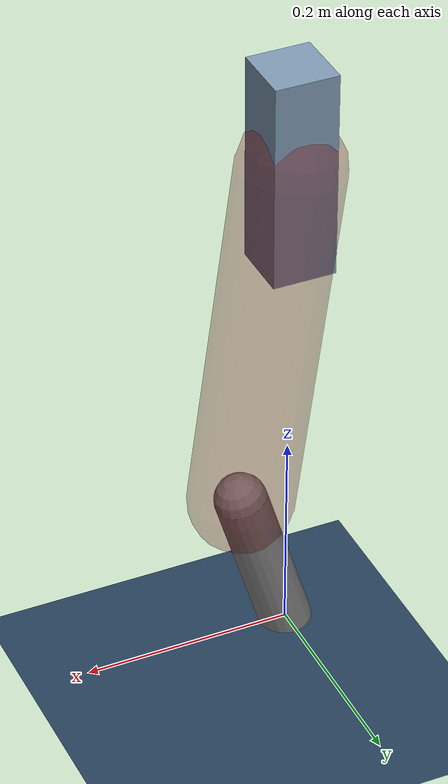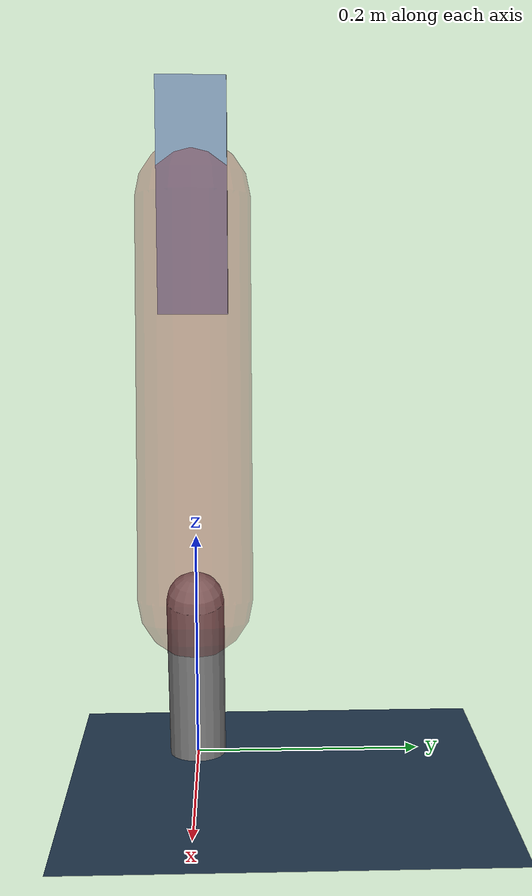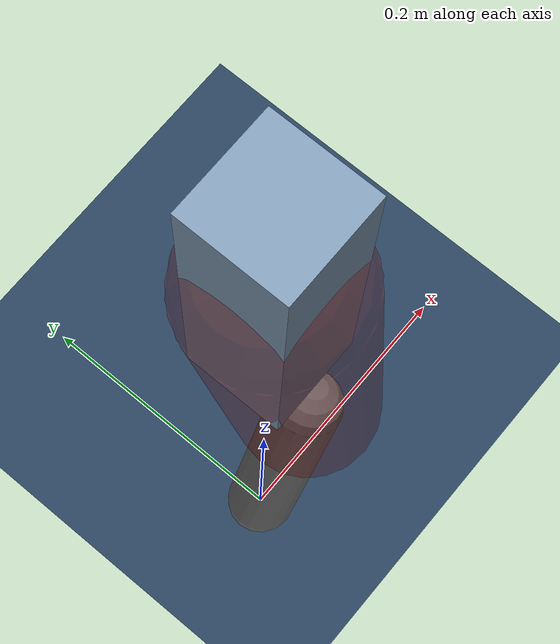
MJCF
<mujoco model="Hopper2D">
	<compiler inertiafromgeom="true" angle="radian" />
	<option timestep="0.001" integrator="implicit" cone="elliptic" solver="Newton" tolerance="1e-10" />

	<default>
		<geom contype="1" conaffinity="1" condim="3" friction="2 0.005 0.0001" solref="0.005 1" />
		<joint limited="true" damping="0.1" />
	</default>

	<asset>
		<texture name="skybox" type="skybox" builtin="gradient" rgb1=".4 .6 .8" rgb2="0 0 0" width="800" height="800" />
		<texture name="grid" type="2d" builtin="checker" rgb1=".1 .2 .3" rgb2=".2 .3 .4" width="300" height="300" mark="edge" markrgb=".2 .3 .4" />
		<material name="ground" texture="grid" texrepeat="1 1" texuniform="true" reflectance="0.1" />
		<material name="leg" rgba="0.5 0.6 0.7 1" />
	</asset>

	<worldbody>

		<geom name="floor" type="plane" size="5 5 0.25" material="ground" />

		<light directional="false" diffuse="0.8 0.8 0.8" specular="0.3 0.3 0.3" pos="0 0 2" dir="0 0 -1" />
		<light mode="targetbodycom" target="base" directional="false" diffuse="0.8 0.8 0.8" specular="0.3 0.3 0.3" pos="0 0 2" dir="0 0 -1" />

		<camera name="fixed" pos="0 -2 1" xyaxes="1 0 0 0 0 1" />
		<camera name="tracking" mode="trackcom" pos="0 -3 1" />

		<body name="root" pos="0 0 0.5002392747512613">
			<joint name="slide_x" type="slide" axis="1 0 0" range="-100 100" />
			<joint name="slide_z" type="slide" axis="0 0 1" range="0 10" />

			<body name="base" pos="0 0 0">
				<geom name="torso" type="box" size="0.03 0.03 0.1" mass="2.7689999999999997" material="leg" />

				<body name="link1" pos="0 0 0" euler="0 1.4375063873639706 0">
					<joint type="hinge" axis="0 -1 0" pos="0 0 0" name="hinge1" limited="true" range="-3.14 3.14" stiffness="0" damping="0.1" />
					<geom name="thigh" type="capsule" fromto="0 0 0 0.349958917798186 0 0" size="0.05" rgba="0.5 0 0 0.3" mass="1.1265849698349208" />

					<body name="link2" pos="0.349958917798186 0 0" euler="0 0.42769085572042437 0">
						<joint type="hinge" axis="0 -1 0" pos="0 0 0" name="hinge2" limited="true" range="-3.14 3.14" stiffness="0" damping="0.1" />
						<geom name="shank" type="capsule" fromto="0 0 0 0.16028035695307527 0 0" size="0.025" mass="0.3668242855624602" />

					</body>
				</body>
			</body>
		</body>
	</worldbody>

	<actuator>
		<motor name="torque1" joint="hinge1" ctrlrange="-164.5469524375395 164.5469524375395" ctrllimited="true" gear="1" />
		<motor name="torque2" joint="hinge2" ctrlrange="-27.8719961148041 27.8719961148041" ctrllimited="true" gear="1" />
	</actuator>
</mujoco>
